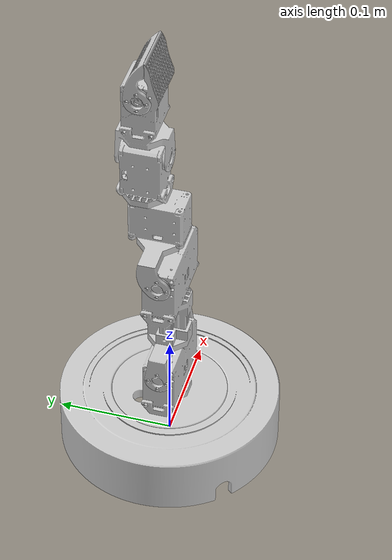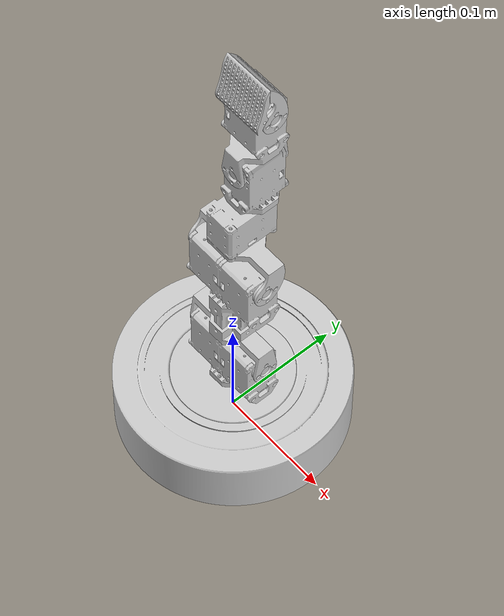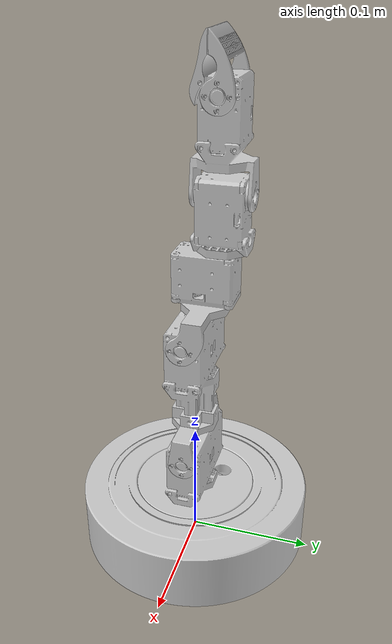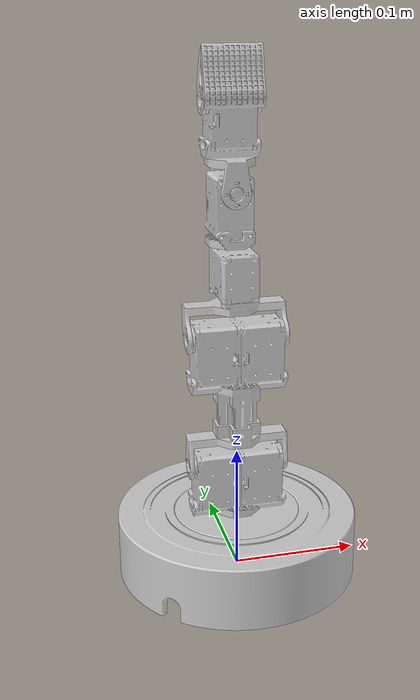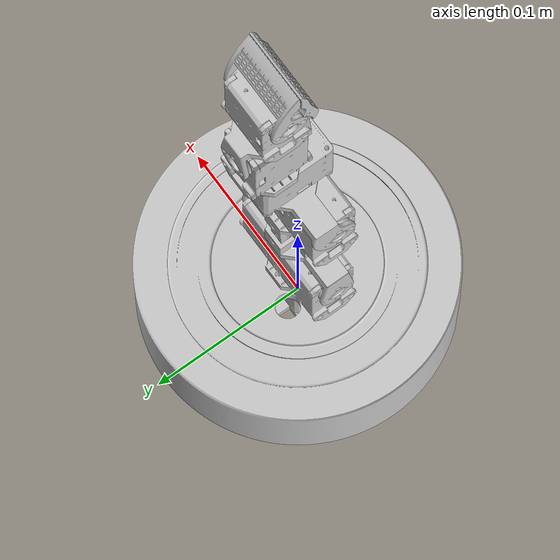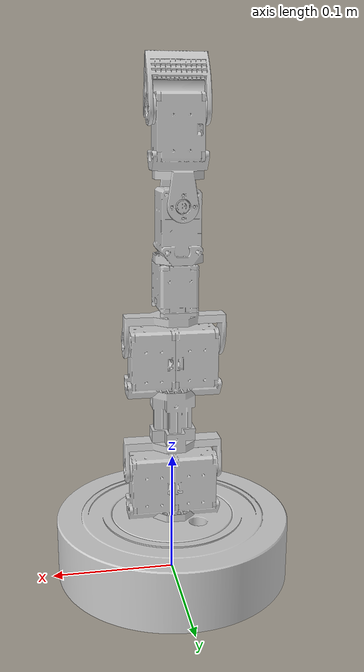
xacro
<?xml version="1.0" ?>
<robot name="clsrobo_63430" xmlns:xacro="http://www.ros.org/wiki/xacro">

    <xacro:include filename="$(find clsrobo_63430_description)/urdf/materials.xacro" />
    <xacro:include filename="$(find clsrobo_63430_description)/urdf/URDF.trans" />
    <xacro:include filename="$(find clsrobo_63430_description)/urdf/URDF.gazebo" />

    <!-->Link Tags Go Here<-->

<link name="0_link">
        <inertial>
            <origin rpy="0 0 0" xyz="0.00003821186809 -0.00030983086283 0.01875604321375"/>
            <mass value="2.07110000000000"/>
            <inertia ixx="3.64188928305714" ixy="0.00000514769757" ixz="0.00000085409818" iyy="3.64187376134656" iyz="0.00000286492593" izz="0.01059796903767"/>
        </inertial>
        <visual>
            <origin rpy="0 0 0" xyz="0 0 0"/>
            <geometry>
                <mesh filename="package://clsrobo_63430_description/meshes/0_link.stl" scale="0.001 0.001 0.001"/>
            </geometry>
            <material name="silver"/>
        </visual>
        <collision>
            <origin rpy="0 0 0" xyz="0 0 0"/>
            <geometry>
                <mesh filename="package://clsrobo_63430_description/meshes/0_link.stl" scale="0.001 0.001 0.001"/>
            </geometry>
        </collision>
    </link>

<link name="1_link">
        <inertial>
            <origin rpy="0 0 0" xyz="0.00012843477802 -0.00014275664176 0.02077775078681"/>
            <mass value="0.22750000000000"/>
            <inertia ixx="0.00019717203900" ixy="-0.00000059205455" ixz="0.00000047245861" iyy="0.00024035701003" iyz="-0.00000052463206" izz="0.00022140776924"/>
        </inertial>
        <visual>
            <origin rpy="0 0 0" xyz="0 0 0"/>
            <geometry>
                <mesh filename="package://clsrobo_63430_description/meshes/1_link.stl" scale="0.001 0.001 0.001"/>
            </geometry>
            <material name="silver"/>
        </visual>
        <collision>
            <origin rpy="0 0 0" xyz="0 0 0"/>
            <geometry>
                <mesh filename="package://clsrobo_63430_description/meshes/1_link.stl" scale="0.001 0.001 0.001"/>
            </geometry>
        </collision>
    </link>

<link name="2_link">
        <inertial>
            <origin rpy="0 0 0" xyz="-0.00000682615862 0.00000000000000 0.07920366986365"/>
            <mass value="0.15775300000000"/>
            <inertia ixx="0.00013008037684" ixy="-0.00000000491200" ixz="-0.00000006213944" iyy="0.00017880546963" iyz="0.00000000000000" izz="0.00006939609280"/>
        </inertial>
        <visual>
            <origin rpy="0 0 0" xyz="0 0 0"/>
            <geometry>
                <mesh filename="package://clsrobo_63430_description/meshes/2_link.stl" scale="0.001 0.001 0.001"/>
            </geometry>
            <material name="silver"/>
        </visual>
        <collision>
            <origin rpy="0 0 0" xyz="0 0 0"/>
            <geometry>
                <mesh filename="package://clsrobo_63430_description/meshes/2_link.stl" scale="0.001 0.001 0.001"/>
            </geometry>
        </collision>
    </link>

<link name="3_link">
        <inertial>
            <origin rpy="0 0 0" xyz="0.00000000000000 0.00830129699094 0.04294565077099"/>
            <mass value="0.07075300000000"/>
            <inertia ixx="0.00002015791734" ixy="0.00000000642900" ixz="-0.00000033162500" iyy="0.00003354371692" iyz="-0.00000053753812" izz="0.00002236220043"/>
        </inertial>
        <visual>
            <origin rpy="0 0 0" xyz="0 0 0"/>
            <geometry>
                <mesh filename="package://clsrobo_63430_description/meshes/3_link.stl" scale="0.001 0.001 0.001"/>
            </geometry>
            <material name="silver"/>
        </visual>
        <collision>
            <origin rpy="0 0 0" xyz="0 0 0"/>
            <geometry>
                <mesh filename="package://clsrobo_63430_description/meshes/3_link.stl" scale="0.001 0.001 0.001"/>
            </geometry>
        </collision>
    </link>

<link name="4_link">
        <inertial>
            <origin rpy="0 0 0" xyz="0.00000000000000 0.00000000000000 0.02842285202155"/>
            <mass value="0.06198200000000"/>
            <inertia ixx="0.00001781079875" ixy="0.00000000881800" ixz="-0.00000006923300" iyy="0.00002019079875" iyz="-0.00000000773100" izz="0.00001068200000"/>
        </inertial>
        <visual>
            <origin rpy="0 0 0" xyz="0 0 0"/>
            <geometry>
                <mesh filename="package://clsrobo_63430_description/meshes/4_link.stl" scale="0.001 0.001 0.001"/>
            </geometry>
            <material name="silver"/>
        </visual>
        <collision>
            <origin rpy="0 0 0" xyz="0 0 0"/>
            <geometry>
                <mesh filename="package://clsrobo_63430_description/meshes/4_link.stl" scale="0.001 0.001 0.001"/>
            </geometry>
        </collision>
    </link>

<link name="5_link">
        <inertial>
            <origin rpy="0 0 0" xyz="0.00000000000000 0.00000000000000 0.04933966276832"/>
            <mass value="0.07327900000000"/>
            <inertia ixx="0.00002687621404" ixy="0.00000000881800" ixz="-0.00000006923300" iyy="0.00003064621404" iyz="-0.00000000773100" izz="0.00001252300000"/>
        </inertial>
        <visual>
            <origin rpy="0 0 0" xyz="0 0 0"/>
            <geometry>
                <mesh filename="package://clsrobo_63430_description/meshes/5_link.stl" scale="0.001 0.001 0.001"/>
            </geometry>
            <material name="silver"/>
        </visual>
        <collision>
            <origin rpy="0 0 0" xyz="0 0 0"/>
            <geometry>
                <mesh filename="package://clsrobo_63430_description/meshes/5_link.stl" scale="0.001 0.001 0.001"/>
            </geometry>
        </collision>
    </link>

<link name="6_link">
        <inertial>
            <origin rpy="0 0 0" xyz="0.00000000000000 0.00000000000000 0.01800000000000"/>
            <mass value="0.00716000000000"/>
            <inertia ixx="0.00000123800000" ixy="-0.00000000020200" ixz="-0.00000000016500" iyy="0.00000283900000" iyz="0.00000012121400" izz="0.00000187100000"/>
        </inertial>
        <visual>
            <origin rpy="0 0 0" xyz="0 0 0"/>
            <geometry>
                <mesh filename="package://clsrobo_63430_description/meshes/6_link.stl" scale="0.001 0.001 0.001"/>
            </geometry>
            <material name="silver"/>
        </visual>
        <collision>
            <origin rpy="0 0 0" xyz="0 0 0"/>
            <geometry>
                <mesh filename="package://clsrobo_63430_description/meshes/6_link.stl" scale="0.001 0.001 0.001"/>
            </geometry>
        </collision>
    </link>

    <!-->Joint Tags Go Here<-->

<joint name="joint_0" type="revolute">
        <origin rpy="0 0 0" xyz="0.00000000000000 0.00000000000000 0.04100000000000"/>
        <limit effort="1000.0" lower="-3.14" upper="3.14" velocity="1.0"/>
        <parent link="0_link"/>
        <child link="1_link"/>
        <axis xyz="0.00000000000000 0.00000000000000 1.00000000000000"/>
</joint>

<joint name="joint_1" type="revolute">
        <origin rpy="0 0 0" xyz="0.00000000000000 0.00000000000000 0.05098200000000"/>
        <limit effort="1000.0" lower="-1.57" upper="1.57" velocity="1.0"/>
        <parent link="1_link"/>
        <child link="2_link"/>
        <axis xyz="1.00000000000000 0.00000000000000 0.00000000000000"/>
</joint>

<joint name="joint_2" type="revolute">
        <origin rpy="0 0 0" xyz="0.00000000000000 0.00000000000000 0.10475000000000"/>
        <limit effort="1000.0" lower="-1.57" upper="1.57" velocity="1.0"/>
        <parent link="2_link"/>
        <child link="3_link"/>
        <axis xyz="1.00000000000000 0.00000000000000 0.00000000000000"/>
</joint>

<joint name="joint_3" type="revolute">
        <origin rpy="0 0 0" xyz="0.00000000000000 0.02047400000000 0.06650000000000"/>
        <limit effort="1000.0" lower="-3.14" upper="3.14" velocity="1.0"/>
        <parent link="3_link"/>
        <child link="4_link"/>
        <axis xyz="0.00000000000000 0.00000000000000 1.00000000000000"/>
</joint>

<joint name="joint_4" type="revolute">
        <origin rpy="0 0 0" xyz="0.00000000000000 -0.00000000000000 0.04175000000000"/>
        <limit effort="1000.0" lower="-1.57" upper="1.57" velocity="1.0"/>
        <parent link="4_link"/>
        <child link="5_link"/>
        <axis xyz="-0.00000000000000 -1.00000000000000 0.00000000000000"/>
</joint>

<joint name="joint_5" type="revolute">
        <origin rpy="0 0 0" xyz="0.00000000000000 -0.00000000000000 0.06575000000000"/>
        <limit effort="1000.0" lower="-1.57" upper="0" velocity="1.0"/>
        <parent link="5_link"/>
        <child link="6_link"/>
        <axis xyz="1.00000000000000 -0.00000000000000 0.00000000000000"/>
</joint>

</robot>

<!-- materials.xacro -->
<robot name="clsrobo_63430" xmlns:xacro="http://www.ros.org/wiki/xacro" >

    <material name="silver">
        <color rgba="0.8 0.8 0.8 1.000"/>
    </material>

</robot>

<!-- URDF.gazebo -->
<robot name="clsrobo_63430" xmlns:xacro="http://www.ros.org/wiki/xacro" >

    <xacro:property name="body_color" value="Gazebo/Silver" />

<gazebo>
    <plugin filename="libgazebo_ros_control.so" name="control"/>
</gazebo>

<gazebo reference="0_link">
    <material>${body_color}</material>
    <mu1>0.2</mu1>
    <mu2>0.2</mu2>
    <selfCollide>true</selfCollide>
    <gravity>true</gravity>
</gazebo>

<gazebo reference="1_link">
        <material>Gazebo/Green</material>
        <mu1>0.2</mu1>
        <mu2>0.2</mu2>
        <selfCollide>true</selfCollide>
</gazebo>

<gazebo reference="2_link">
        <material>Gazebo/Green</material>
        <mu1>0.2</mu1>
        <mu2>0.2</mu2>
        <selfCollide>true</selfCollide>
</gazebo>

<gazebo reference="3_link">
        <material>Gazebo/Green</material>
        <mu1>0.2</mu1>
        <mu2>0.2</mu2>
        <selfCollide>true</selfCollide>
</gazebo>

<gazebo reference="4_link">
        <material>Gazebo/Green</material>
        <mu1>0.2</mu1>
        <mu2>0.2</mu2>
        <selfCollide>true</selfCollide>
</gazebo>

<gazebo reference="5_link">
        <material>Gazebo/Green</material>
        <mu1>0.2</mu1>
        <mu2>0.2</mu2>
        <selfCollide>true</selfCollide>
</gazebo>

<gazebo reference="6_link">
        <material>Gazebo/Green</material>
        <mu1>0.2</mu1>
        <mu2>0.2</mu2>
        <selfCollide>true</selfCollide>
</gazebo>

</robot>
